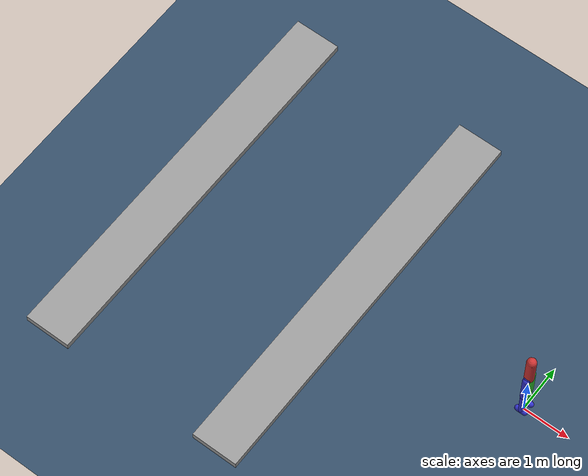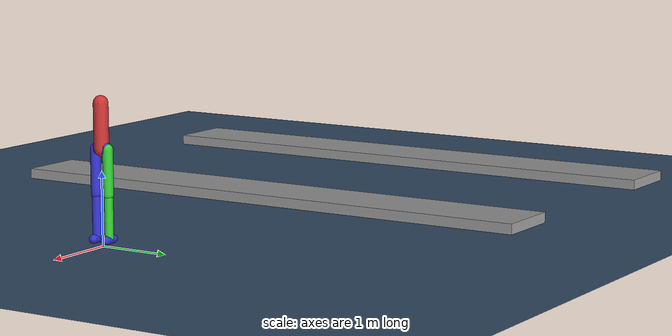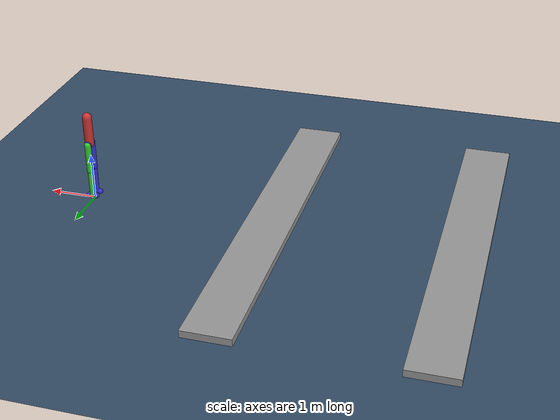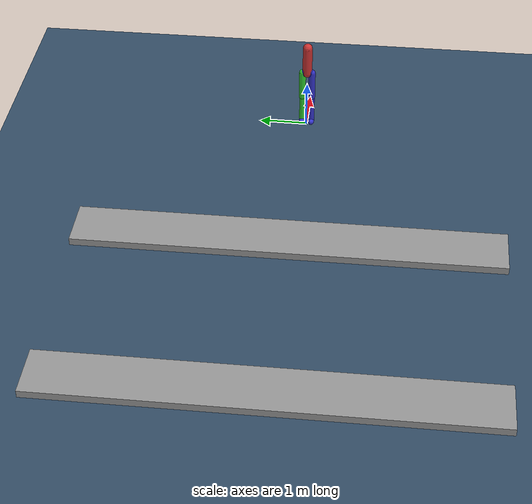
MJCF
<mujoco model="simple_biped">
    <compiler angle="degree"/>

    <option timestep="0.001"/>

    <worldbody>
        <light name="sun" directional="true" dir="-1 -1 -2" castshadow="true"/>

        <!-- Ground plane -->
        <geom name="ground" type="plane" size="50 50 0.1" rgba="0.2 0.3 0.4 1"/>
        <!-- Obstacle box -->
        <geom
            name="obstacle_box"
            type="box"
            pos="-4 0 0.075"
            size="0.5 4.2 0.075"
            rgba="0.6 0.6 0.6 1"/>

        <geom
            name="obstacle_box_2"
            type="box"
            pos="-8 0 0.075"
            size="0.5 4.2 0.075"
            rgba="0.6 0.6 0.6 1"/>

        <!-- Torso -->
        <body name="torso" pos="0 0 1.6">
            <geom type="capsule" size="0.1 0.3" mass="8" rgba="0.8 0.2 0.2 1"/>
            <joint type="free"/>

            <!-- Right leg -->
            <body name="right_hip_y" pos="0 -0.05 -0.3">
                <joint name="right_hip_y_j" type="hinge" axis="1 0 0" range="-20 20"/>
                <geom type="capsule" size="0.07 0.025" mass="0.1" rgba="0.2 0.2 0.8 1" pos="0 -0.0125 0.0"  euler="-0 0 0" contype="0" conaffinity="0"/>
                <body name="right_thigh" pos="0 -0.05 -0.0">
                    <joint name="right_hip" type="hinge" axis="0 1 0" range="-60 60"/>
                    <geom type="capsule" size="0.07 0.3" mass="1" rgba="0.2 0.2 0.8 1" pos="0 0 -0.3" contype="0" conaffinity="0"/>
                    <!-- Right shin -->
                    <body name="right_shin" pos="0 0 -0.6">
                        <joint name="right_knee" type="hinge" axis="0 1 0" range="-120 -5"/>
                        <geom name="right_shin_geom" type="capsule" size="0.06 0.3" mass="1" rgba="0.2 0.2 0.8 1" pos="0 0 -0.3"/>
                        <body name="right_foot" pos="0 0 -0.6">
                            <joint name="right_foot_j" type="hinge" axis="0 1 0" range="-60 60"/>
                            <geom name="right_foot_geom" type="capsule" size="0.06 0.08" mass="0.1" rgba="0.2 0.2 0.8 1" pos="0 0 -0.0" euler="-0 90 0"/>
                        </body>
                    </body>
                </body>
            </body>
            <!-- Left leg -->
            <body name="left_hip_y" pos="0 0.05 -0.3">
                <joint name="left_hip_y_j" type="hinge" axis="1 0 0" range="-20 20"/>
                <geom type="capsule" size="0.07 0.025" mass="0.1" rgba="0.2 0.2 0.8 1" pos="0 0.0125 0.0"  euler="-0 0 0" contype="0" conaffinity="0"/>
                <!-- Left thigh -->
                <body name="left_thigh" pos="0 0.05 -0.0">
                    <joint name="left_hip" type="hinge" axis="0 1 0" range="-120 120"/>
                    <geom type="capsule" size="0.07 0.3" mass="1" rgba="0.2 0.8 0.2 1" pos="0 0 -0.3" contype="0" conaffinity="0"/>
                    <!-- Left shin -->
                    <body name="left_shin" pos="0 0 -0.6">
                        <joint name="left_knee" type="hinge" axis="0 1 0" range="-120 -5"/>
                        <geom name="left_shin_geom" type="capsule" size="0.06 0.3" mass="1" rgba="0.2 0.8 0.2 1" pos="0 0 -0.3"/>
                        <body name="left_foot" pos="0 0 -0.6">
                            <joint name="left_foot_j" type="hinge" axis="0 1 0" range="-120 120"/>
                            <geom name="left_foot_geom" type="capsule" size="0.06 0.08" mass="0.1" rgba="0.2 0.2 0.8 1" pos="0 0 -0.0" euler="-0 90 0"/>
                        </body>
                    </body>
                </body>
            </body>
        </body>
    </worldbody>

    <actuator>
        <velocity joint="right_hip_y_j" kv="20"/>
        <velocity joint="right_hip" kv="20"/>
        <velocity joint="right_knee" kv="20"/>
        <velocity joint="right_foot_j" kv="0.1"/>
        <velocity joint="left_hip_y_j" kv="20"/>
        <velocity joint="left_hip" kv="20"/>
        <velocity joint="left_knee" kv="20"/>
        <velocity joint="left_foot_j" kv="0.1"/>
    </actuator>

</mujoco>
